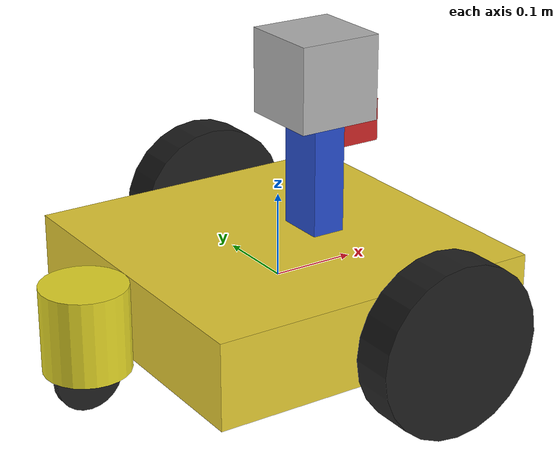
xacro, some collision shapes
<?xml version='1.0'?>

<robot name="udacity_bot" xmlns:xacro="http://www.ros.org/wiki/xacro">

  <xacro:include filename="$(find udacity_bot)/urdf/mine.gazebo" />
  <xacro:include filename="$(find udacity_bot)/urdf/mine/footprint.xacro" />
  <xacro:include filename="$(find udacity_bot)/urdf/mine/chassis.xacro" />
  <xacro:include filename="$(find udacity_bot)/urdf/mine/rear_caster.xacro" />
  <xacro:include filename="$(find udacity_bot)/urdf/mine/rear_wheel.xacro" />
  <xacro:include filename="$(find udacity_bot)/urdf/mine/right_wheel.xacro" />
  <xacro:include filename="$(find udacity_bot)/urdf/mine/left_wheel.xacro" />
  <xacro:include filename="$(find udacity_bot)/urdf/mine/camera.xacro" />
  <xacro:include filename="$(find udacity_bot)/urdf/mine/laser.xacro" />
  <xacro:include filename="$(find udacity_bot)/urdf/mine/rod.xacro" />

</robot>

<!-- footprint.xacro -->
<robot name="footprint" xmlns:xacro="http://www.ros.org/wiki/xacro">
  <!-- footprint LINK -->
  <link name="robot_footprint"></link>

  <!-- footprint + chassis JOINT -->
  <joint name="robot_footprint_joint" type="fixed">
    <origin xyz="0 0 0" rpy="0 0 0" />
    <parent link="robot_footprint"/>
    <child link="chassis" />
  </joint>
</robot>

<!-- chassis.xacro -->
<robot name="chassis" xmlns:xacro="http://www.ros.org/wiki/xacro">
  <!-- chassis LINK -->
  <link name='chassis'>
    <pose>0 0 0.1 0 0 0</pose>

    <inertial>
      <mass value="15.0"/>
      <origin xyz="0 0 0" rpy=" 0 0 0"/>
      <inertia
          ixx="0.1" ixy="0" ixz="0"
          iyy="0.1" iyz="0"
          izz="0.1"
      />
    </inertial>

    <collision name='collision'>
      <origin xyz="0 0 0" rpy=" 0 0 0"/>
      <geometry>
        <box size=".4 .4 .1"/>
      </geometry>
    </collision>

    <visual name='chassis_visual'>
      <origin xyz="0 0 0" rpy=" 0 0 0"/>
      <geometry>
        <box size=".4 .4 .1"/>
      </geometry>
    </visual>
  </link>
</robot>

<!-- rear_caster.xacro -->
<robot name="rear_caster" xmlns:xacro="http://www.ros.org/wiki/xacro">
  <link name='rear_caster'>
    <collision name='rear_caster_collision'>
      <geometry>
        <cylinder length='0.1' radius='0.05'/>
      </geometry>
    </collision>

    <inertial>
      <mass value="0.1"/>
      <inertia
        ixx="0.1" ixy="0" ixz="0"
        iyy="0.1" iyz="0"
        izz="0.1"
      />
    </inertial>

    <visual name='rear_caster_visual'>
      <geometry>
        <cylinder length='0.1' radius='0.05'/>
      </geometry>
    </visual>

  </link>

  <joint type="continuous" name="rear_caster_joint">
    <origin xyz="-0.25 0 0" rpy="0 0 0"/>
    <child link="rear_caster"/>
    <parent link="chassis"/>
    <axis xyz="0 0 1" rpy="0 0 0"/>
  </joint>
</robot>

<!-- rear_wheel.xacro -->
<robot name="rear_wheel" xmlns:xacro="http://www.ros.org/wiki/xacro">
  <link name='rear_wheel'>
    <collision name='rear_wheel_collision'>
      <geometry>
        <cylinder length='0.01' radius='0.04'/>
      </geometry>
    </collision>

    <inertial>
      <mass value="2"/>
      <inertia
        ixx="0.1" ixy="0" ixz="0"
        iyy="0.1" iyz="0"
        izz="0.1"
      />
    </inertial>

    <visual name='rear_wheel_visual'>
      <geometry>
        <cylinder length='0.01' radius='0.04'/>
      </geometry>
    </visual>
  </link>

  <joint type="continuous" name="rear_wheel_joint">
    <origin xyz="0 0 -0.06" rpy="-1.5708 0 0"/>
    <child link="rear_wheel"/>
    <parent link="rear_caster"/>
    <axis xyz="0 0 1" rpy="0 0 0"/>
  </joint>
</robot>

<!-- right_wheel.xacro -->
<robot name="right_wheel" xmlns:xacro="http://www.ros.org/wiki/xacro">
  <!-- right wheel LINK -->
  <link name='right_wheel'>
    <inertial>
      <mass value="5.0"/>
      <origin xyz="0 0 0" rpy=" 0 1.5707 -1.5707"/>
      <inertia
        ixx="0.1" ixy="0" ixz="0"
        iyy="0.1" iyz="0"
        izz="0.1"
      />
    </inertial>

    <collision>
      <origin xyz="0 0 0" rpy=" 0 1.5707 -1.5707"/>
      <geometry>
        <cylinder length="0.05" radius="0.1"/>
      </geometry>
    </collision>

    <visual>
      <origin xyz="0 0 0" rpy=" 0 1.5707 -1.5707"/>
      <geometry>
        <cylinder length="0.05" radius="0.1"/>
      </geometry>
    </visual>
  </link>

  <!-- right wheel + chassis JOINT -->
  <joint type="continuous" name="right_wheel_hinge">
    <origin xyz="0.05 -0.25 0" rpy="0 0 0"/>
    <child link="right_wheel"/>
    <parent link="chassis"/>
    <axis xyz="0 1 0" rpy="0 0 0"/>
    <limit effort="10000" velocity="1000"/>
    <joint_properties damping="1.0" friction="1.0"/>
  </joint>
</robot>

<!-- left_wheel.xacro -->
<robot name="left_wheel" xmlns:xacro="http://www.ros.org/wiki/xacro">

  <!-- left wheel - LINK -->
  <link name='left_wheel'>
    <inertial>
      <mass value="5.0"/>
      <origin xyz="0 0 0" rpy=" 0 1.5707 1.5707"/>
      <inertia
      ixx="0.1" ixy="0" ixz="0"
      iyy="0.1" iyz="0"
      izz="0.1"
      />
    </inertial>

    <collision>
      <origin xyz="0 0 0" rpy=" 0 1.5707 1.5707"/>
      <geometry>
        <cylinder length="0.05" radius="0.1"/>
      </geometry>
    </collision>

    <visual>
      <origin xyz="0 0 0" rpy=" 0 1.5707 1.5707"/>
      <geometry>
        <cylinder length="0.05" radius="0.1"/>
      </geometry>
    </visual>
  </link>

  <!-- left wheel + chassis - JOINT -->
  <joint type="continuous" name="left_wheel_hinge">
    <origin xyz="0.05 0.25 0" rpy="0 0 0"/>
    <child link="left_wheel"/>
    <parent link="chassis"/>
    <axis xyz="0 1 0" rpy="0 0 0"/>
    <limit effort="10000" velocity="1000"/>
    <joint_properties damping="1.0" friction="1.0"/>
  </joint>
</robot>

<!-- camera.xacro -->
<robot name="camera" xmlns:xacro="http://www.ros.org/wiki/xacro">
  <!-- camera - LINK -->
  <link name='camera'>
    <inertial>
      <mass value="0.1"/>
      <origin xyz="0 0 0" rpy="0 0 0"/>
      <inertia
        ixx="1e-6" ixy="0" ixz="0"
        iyy="1e-6" iyz="0"
        izz="1e-6"
      />
    </inertial>

    <collision name='camera_collision'>
      <origin xyz="0 0 0" rpy=" 0 0 0"/>
      <geometry>
        <box size="0.05 0.05 0.05" />
      </geometry>
    </collision>

    <visual name='camera_visual'>
      <origin xyz="0 0 0" rpy=" 0 0 0"/>
      <geometry>
        <box size="0.05 0.05 0.05" />
      </geometry>
    </visual>
  </link>

  <!-- camera + rod JOINT -->
  <joint type="fixed" name="camera_joint">
    <origin xyz="0.045 0 0.075" rpy="0 0 0"/>
    <child link="camera"/>
    <parent link="rod"/>
  </joint>
</robot>

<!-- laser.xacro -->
<robot name="laser" xmlns:xacro="http://www.ros.org/wiki/xacro">
  <!-- laser rangefinder - LINK -->
  <link name='hokuyo'>
    <inertial>
      <mass value="0.1"/>
      <origin xyz="0 0 0" rpy="0 0 0"/>
      <inertia
        ixx="1e-6" ixy="0" ixz="0"
        iyy="1e-6" iyz="0"
        izz="1e-6"
      />
    </inertial>

    <collision name='hokuyo_collision'>
      <origin xyz="0 0 0" rpy=" 0 0 0"/>
      <geometry>
        <box size="0.1 0.1 0.1" />
      </geometry>
    </collision>

    <visual name='hokuyo_visual'>
      <origin xyz="0 0 0" rpy="0 0 0"/>
      <geometry>
        <mesh filename="package://udacity_bot/meshes/hokuyo.dae"/>
      </geometry>
    </visual>
  </link>

  <!-- laser rangefinder + rod JOINT -->
  <joint type="fixed" name="hokuyo_joint">
    <origin xyz="0 0 0.135" rpy="0 0 0"/>
    <child link="hokuyo"/>
    <parent link="rod"/>
  </joint>
</robot>

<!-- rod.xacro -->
<robot name="rod" xmlns:xacro="http://www.ros.org/wiki/xacro">
  <link name='rod'>
    <inertial>
      <mass value="1.0"/>
      <inertia
          ixx="0.2" ixy="0" ixz="0"
          iyy="0.2" iyz="0"
          izz="0.2"
      />
    </inertial>

    <collision name='rod_collision'>
      <geometry>
        <box size="0.04 0.06 0.2"/>
      </geometry>
    </collision>

    <visual name='rod_visual'>
      <geometry>
        <box size="0.04 0.06 0.2"/>
      </geometry>
    </visual>
  </link>

  <joint type="fixed" name="rod_joint">
    <origin xyz="0.05 0 0.1" rpy="0 0 0"/>
    <child link="rod"/>
    <parent link="chassis"/>
  </joint>
</robot>
